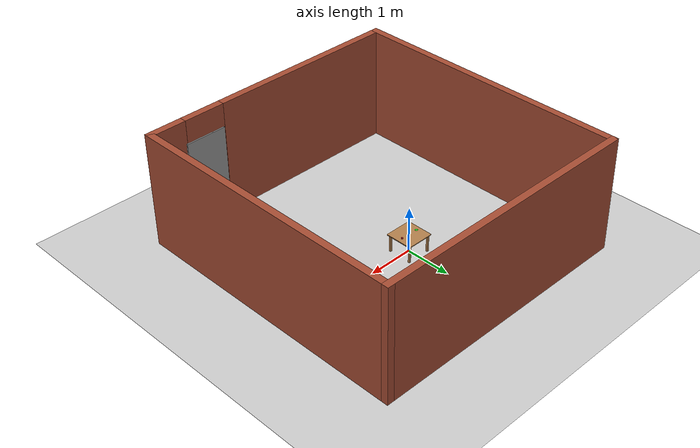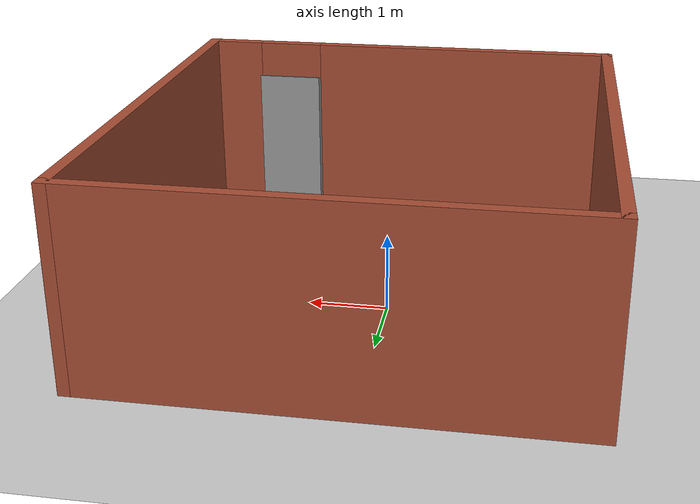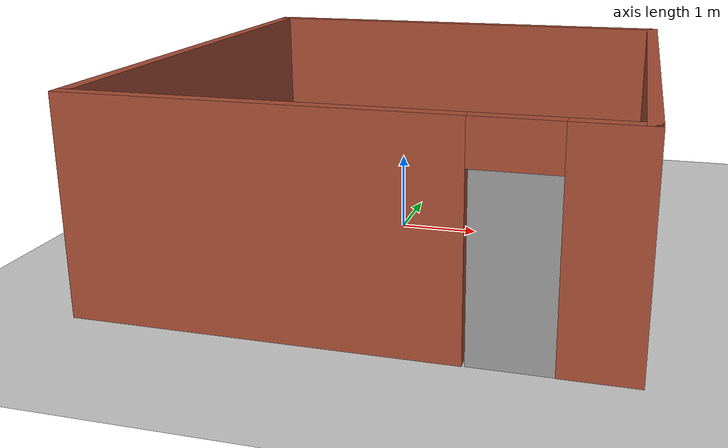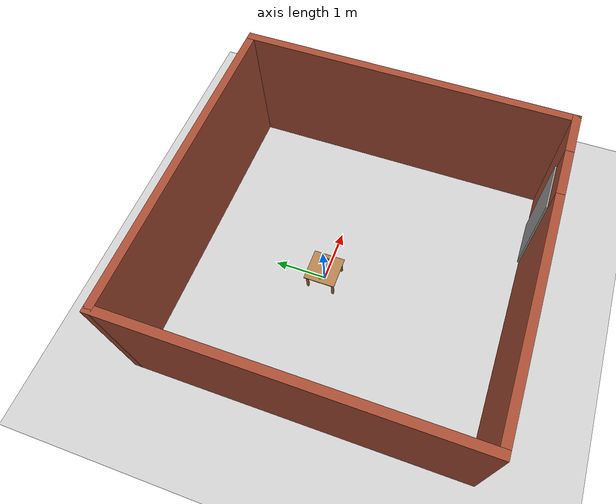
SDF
<sdf version='1.7'>
  <world name='default'>

    <!-- ========== LIGHTING ========== -->
    <light name='sun' type='directional'>
      <cast_shadows>1</cast_shadows>
      <pose>0 0 10 0 -0 0</pose>
      <diffuse>0.8 0.8 0.8 1</diffuse>
      <specular>0.2 0.2 0.2 1</specular>
      <attenuation>
        <range>1000</range>
        <constant>0.9</constant>
        <linear>0.01</linear>
        <quadratic>0.001</quadratic>
      </attenuation>
      <direction>-0.5 0.1 -0.9</direction>
    </light>

    <!-- ========== GROUND PLANE ========== -->
    <model name='ground_plane'>
      <static>1</static>
      <link name='link'>
        <collision name='collision'>
          <geometry>
            <plane>
              <normal>0 0 1</normal>
              <size>100 100</size>
            </plane>
          </geometry>
          <surface>
            <friction>
              <ode>
                <mu>100</mu>
                <mu2>50</mu2>
              </ode>
            </friction>
          </surface>
        </collision>
        <visual name='visual'>
          <cast_shadows>0</cast_shadows>
          <geometry>
            <plane>
              <normal>0 0 1</normal>
              <size>100 100</size>
            </plane>
          </geometry>
          <material>
            <script>
              <uri>file://media/materials/scripts/gazebo.material</uri>
              <name>Gazebo/Grey</name>
            </script>
          </material>
        </visual>
      </link>
    </model>

    <gravity>0 0 -9.8</gravity>
    <physics type='ode'>
      <max_step_size>0.001</max_step_size>
      <real_time_factor>1</real_time_factor>
      <real_time_update_rate>1000</real_time_update_rate>
      <ode>
        <solver>
          <type>world</type>
          <iters>80</iters>
          <sor>1.0</sor>
        </solver>
        <constraints>
          <cfm>0.00001</cfm>
          <erp>0.2</erp>
          <contact_max_correcting_vel>100.0</contact_max_correcting_vel>
          <contact_surface_layer>0.0005</contact_surface_layer>
        </constraints>
      </ode>
    </physics>

    <scene>
      <ambient>0.4 0.4 0.4 1</ambient>
      <background>0.7 0.7 0.7 1</background>
      <shadows>1</shadows>
    </scene>

    <!-- ========== WALLS (from your world) ========== -->
    <model name='Untitled'>
      <pose>-2.8231 -0.802565 0 0 -0 0</pose>
      <link name='Wall_17'>
        <collision name='Wall_17_Collision'>
          <geometry>
            <box><size>6.25 0.15 2.5</size></box>
          </geometry>
          <pose>0 0 1.25 0 -0 0</pose>
        </collision>
        <visual name='Wall_17_Visual'>
          <pose>0 0 1.25 0 -0 0</pose>
          <geometry>
            <box><size>6.25 0.15 2.5</size></box>
          </geometry>
          <material>
            <script>
              <uri>file://media/materials/scripts/gazebo.material</uri>
              <name>Gazebo/Bricks</name>
            </script>
            <ambient>1 1 1 1</ambient>
          </material>
        </visual>
        <pose>0.155872 0.298732 0 0 -0 -1.5708</pose>
      </link>
      <link name='Wall_18'>
        <pose>3.08087 -2.75127 0 0 -0 0</pose>
        <visual name='Wall_18_Visual_0'>
          <pose>-0.860141 0 1.25 0 -0 0</pose>
          <geometry>
            <box><size>4.27972 0.15 2.5</size></box>
          </geometry>
          <material>
            <script>
              <uri>file://media/materials/scripts/gazebo.material</uri>
              <name>Gazebo/Bricks</name>
            </script>
            <ambient>1 1 1 1</ambient>
          </material>
        </visual>
        <collision name='Wall_18_Collision_0'>
          <geometry>
            <box><size>4.27972 0.15 2.5</size></box>
          </geometry>
          <pose>-0.860141 0 1.25 0 -0 0</pose>
        </collision>
        <visual name='Wall_18_Visual_1'>
          <pose>2.58986 0 1.25 0 -0 0</pose>
          <geometry>
            <box><size>0.820282 0.15 2.5</size></box>
          </geometry>
          <material>
            <script>
              <uri>file://media/materials/scripts/gazebo.material</uri>
              <name>Gazebo/Bricks</name>
            </script>
            <ambient>1 1 1 1</ambient>
          </material>
        </visual>
        <collision name='Wall_18_Collision_1'>
          <geometry>
            <box><size>0.820282 0.15 2.5</size></box>
          </geometry>
          <pose>2.58986 0 1.25 0 -0 0</pose>
        </collision>
        <visual name='Wall_18_Visual_2'>
          <pose>1.72972 0 2.25 0 -0 0</pose>
          <geometry>
            <box><size>0.9 0.15 0.5</size></box>
          </geometry>
          <material>
            <script>
              <uri>file://media/materials/scripts/gazebo.material</uri>
              <name>Gazebo/Bricks</name>
            </script>
            <ambient>1 1 1 1</ambient>
          </material>
        </visual>
        <collision name='Wall_18_Collision_2'>
          <geometry>
            <box><size>0.9 0.15 0.5</size></box>
          </geometry>
          <pose>1.72972 0 2.25 0 -0 0</pose>
        </collision>
      </link>
      <link name='Wall_19'>
        <collision name='Wall_19_Collision'>
          <geometry>
            <box><size>6.25 0.15 2.5</size></box>
          </geometry>
          <pose>0 0 1.25 0 -0 0</pose>
        </collision>
        <visual name='Wall_19_Visual'>
          <pose>0 0 1.25 0 -0 0</pose>
          <geometry>
            <box><size>6.25 0.15 2.5</size></box>
          </geometry>
          <material>
            <script>
              <uri>file://media/materials/scripts/gazebo.material</uri>
              <name>Gazebo/Bricks</name>
            </script>
            <ambient>1 1 1 1</ambient>
          </material>
        </visual>
        <pose>6.00587 0.298732 0 0 -0 1.5708</pose>
      </link>
      <link name='Wall_20'>
        <collision name='Wall_20_Collision'>
          <geometry>
            <box><size>6 0.15 2.5</size></box>
          </geometry>
          <pose>0 0 1.25 0 -0 0</pose>
        </collision>
        <visual name='Wall_20_Visual'>
          <pose>0 0 1.25 0 -0 0</pose>
          <geometry>
            <box><size>6 0.15 2.5</size></box>
          </geometry>
          <material>
            <script>
              <uri>file://media/materials/scripts/gazebo.material</uri>
              <name>Gazebo/Bricks</name>
            </script>
            <ambient>1 1 1 1</ambient>
          </material>
        </visual>
        <pose>3.08087 3.34873 0 0 -0 3.14159</pose>
      </link>
      <static>1</static>
    </model>

    <!-- ========== DOOR ========== -->
    <model name='Untitled_0'>
      <pose>-0.71664 2.7166 0 0 -0 0</pose>
      <link name='Door_1'>
        <collision name='Door_1_Collision'>
          <geometry>
            <box><size>0.9 0.17 2</size></box>
          </geometry>
          <pose>0 0 1 0 -0 0</pose>
        </collision>
        <visual name='Door_1_Visual'>
          <pose>0 0 1 0 -0 0</pose>
          <geometry>
            <box><size>0.9 0.17 2</size></box>
          </geometry>
          <material>
            <script>
              <uri>file://media/materials/scripts/gazebo.material</uri>
              <name>Gazebo/Grey</name>
            </script>
          </material>
        </visual>
        <pose>2.72983 -6.25268 0 0 -0 0</pose>
      </link>
      <static>1</static>
    </model>

    <!-- ========== TABLE FOR ROBOT ========== -->
    <model name='robot_table'>
      <static>1</static>
      <pose>0.0 0.0 0.0 0 0 0</pose>
      <link name='table_link'>
        <!-- Table top -->
        <collision name='table_top_collision'>
          <pose>0 0 0.39 0 0 0</pose>
          <geometry>
            <box><size>0.6 0.6 0.02</size></box>
          </geometry>
        </collision>
        <visual name='table_top_visual'>
          <pose>0 0 0.39 0 0 0</pose>
          <geometry>
            <box><size>0.6 0.6 0.02</size></box>
          </geometry>
          <material>
            <script>
              <uri>file://media/materials/scripts/gazebo.material</uri>
              <name>Gazebo/Wood</name>
            </script>
          </material>
        </visual>
        <!-- Leg 1 -->
        <collision name='leg1_col'>
          <pose>0.25 0.25 0.19 0 0 0</pose>
          <geometry><box><size>0.04 0.04 0.38</size></box></geometry>
        </collision>
        <visual name='leg1_vis'>
          <pose>0.25 0.25 0.19 0 0 0</pose>
          <geometry><box><size>0.04 0.04 0.38</size></box></geometry>
          <material>
            <script>
              <uri>file://media/materials/scripts/gazebo.material</uri>
              <name>Gazebo/Wood</name>
            </script>
          </material>
        </visual>
        <!-- Leg 2 -->
        <collision name='leg2_col'>
          <pose>-0.25 0.25 0.19 0 0 0</pose>
          <geometry><box><size>0.04 0.04 0.38</size></box></geometry>
        </collision>
        <visual name='leg2_vis'>
          <pose>-0.25 0.25 0.19 0 0 0</pose>
          <geometry><box><size>0.04 0.04 0.38</size></box></geometry>
          <material>
            <script>
              <uri>file://media/materials/scripts/gazebo.material</uri>
              <name>Gazebo/Wood</name>
            </script>
          </material>
        </visual>
        <!-- Leg 3 -->
        <collision name='leg3_col'>
          <pose>0.25 -0.25 0.19 0 0 0</pose>
          <geometry><box><size>0.04 0.04 0.38</size></box></geometry>
        </collision>
        <visual name='leg3_vis'>
          <pose>0.25 -0.25 0.19 0 0 0</pose>
          <geometry><box><size>0.04 0.04 0.38</size></box></geometry>
          <material>
            <script>
              <uri>file://media/materials/scripts/gazebo.material</uri>
              <name>Gazebo/Wood</name>
            </script>
          </material>
        </visual>
        <!-- Leg 4 -->
        <collision name='leg4_col'>
          <pose>-0.25 -0.25 0.19 0 0 0</pose>
          <geometry><box><size>0.04 0.04 0.38</size></box></geometry>
        </collision>
        <visual name='leg4_vis'>
          <pose>-0.25 -0.25 0.19 0 0 0</pose>
          <geometry><box><size>0.04 0.04 0.38</size></box></geometry>
          <material>
            <script>
              <uri>file://media/materials/scripts/gazebo.material</uri>
              <name>Gazebo/Wood</name>
            </script>
          </material>
        </visual>
      </link>
    </model>

    <!-- ========== PICK OBJECT: unit_box_0 (on the table) ========== -->
    <model name='unit_box_0'>
      <pose>0.20 0.0 0.41 0 0 0</pose>
      <link name='link'>
        <inertial>
          <mass>0.02</mass>
          <inertia>
            <ixx>2.67e-06</ixx>
            <ixy>0</ixy>
            <ixz>0</ixz>
            <iyy>1.87e-06</iyy>
            <iyz>0</iyz>
            <izz>1.10e-06</izz>
          </inertia>
        </inertial>
        <collision name='collision'>
          <max_contacts>8</max_contacts>
          <geometry>
            <box>
              <size>0.021 0.032 0.040</size>
            </box>
          </geometry>
          <surface>
            <friction>
              <ode>
                <mu>80.0</mu>
                <mu2>80.0</mu2>
              </ode>
              <torsional>
                <coefficient>10.0</coefficient>
              </torsional>
            </friction>
            <contact>
              <ode>
                <kp>500000</kp>
                <kd>50</kd>
                <max_vel>0.0</max_vel>
                <min_depth>0.0003</min_depth>
                <soft_cfm>0.0001</soft_cfm>
                <soft_erp>0.8</soft_erp>
              </ode>
            </contact>
          </surface>
        </collision>
        <visual name='visual'>
          <geometry>
            <box>
              <size>0.021 0.032 0.040</size>
            </box>
          </geometry>
          <material>
            <ambient>0.9 0.2 0.2 1</ambient>
            <diffuse>0.9 0.2 0.2 1</diffuse>
          </material>
        </visual>
      </link>
    </model>

    <!-- ========== DROP TARGET MARKER ========== -->
    <model name='drop_target'>
      <static>1</static>
      <pose>-0.20 0.0 0.40 0 0 0</pose>
      <link name='link'>
        <visual name='visual'>
          <geometry>
            <cylinder>
              <radius>0.03</radius>
              <length>0.002</length>
            </cylinder>
          </geometry>
          <material>
            <ambient>0.1 0.9 0.1 1</ambient>
            <diffuse>0.1 0.9 0.1 1</diffuse>
          </material>
        </visual>
      </link>
    </model>

    <gui fullscreen='0'>
      <camera name='user_camera'>
        <pose>0.8 -0.8 1.2 0 0.6 2.3</pose>
        <view_controller>orbit</view_controller>
        <projection_type>perspective</projection_type>
      </camera>
    </gui>

  </world>
</sdf>
